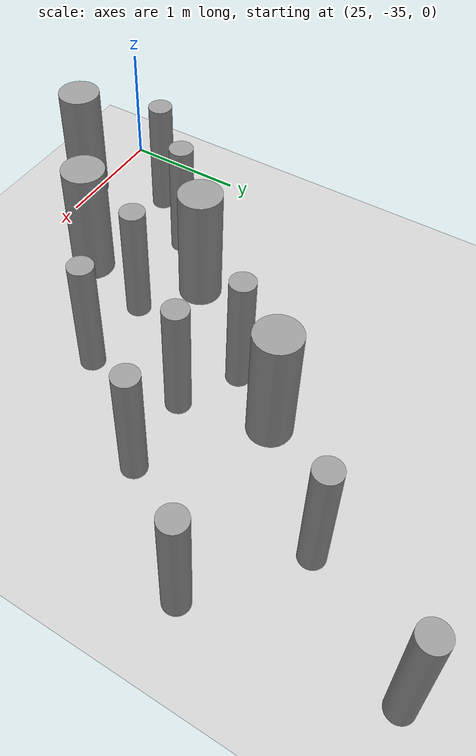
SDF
<sdf version="1.6">
 <world name="default">
  <model name="ground_plane">
   <static>1</static>
   <link name="link">
    <collision name="collision">
     <geometry><plane><normal>0 0 1</normal><size>100 100</size></plane></geometry>
     <surface><friction><ode><mu>100</mu><mu2>50</mu2></ode></friction></surface>
    </collision>
    <visual name="visual">
     <cast_shadows>0</cast_shadows>
     <geometry><plane><normal>0 0 1</normal><size>100 100</size></plane></geometry>
     <material>
      <script><uri>file://media/materials/scripts/gazebo.material</uri><name>Gazebo/Grey</name></script>
     </material>
    </visual>
   </link>
  </model>
  <model name="cyl_wall_clone_clone_1_clone_1_clone_clone_0_clone">
   <link name="link_0">
    <pose>-2.73893 -0.366465 0 0 -0 0</pose>
    <inertial>
     <mass>0.0374993</mass>
     <inertia>
      <ixx>0.00321281</ixx>
      <ixy>0</ixy>
      <ixz>0</ixz>
      <iyy>0.00321281</iyy>
      <iyz>0</iyz>
      <izz>0.000175774</izz>
     </inertia>
    </inertial>
    <visual name="visual">
     <geometry><cylinder><radius>0.0968661</radius><length>1</length></cylinder></geometry>
     <material>
      <lighting>1</lighting>
      <script><uri>file://media/materials/scripts/gazebo.material</uri><name>Gazebo/Grey</name></script>
      <ambient>0.3 0.3 0.3 1</ambient>
      <diffuse>0.7 0.7 0.7 1</diffuse>
      <specular>0.01 0.01 0.01 1</specular>
      <emissive>0 0 0 1</emissive>
     </material>
    </visual>
    <collision name="collision">
     <geometry><cylinder><radius>0.096866</radius><length>1</length></cylinder></geometry>
     <surface>
      <friction>
       <ode><mu>1</mu><mu2>1</mu2><fdir1>0 0 0</fdir1><slip1>0</slip1><slip2>0</slip2></ode>
       <torsional>
        <coefficient>1</coefficient>
        <patch_radius>0</patch_radius>
        <surface_radius>0</surface_radius>
        <use_patch_radius>1</use_patch_radius>
        <ode><slip>0</slip></ode>
       </torsional>
      </friction>
      <bounce><restitution_coefficient>0</restitution_coefficient><threshold>1e+06</threshold></bounce>
      <contact>
       <collide_without_contact>0</collide_without_contact>
       <collide_without_contact_bitmask>1</collide_without_contact_bitmask>
       <collide_bitmask>1</collide_bitmask>
       <ode>
        <soft_cfm>0</soft_cfm>
        <soft_erp>0.2</soft_erp>
        <kp>1e+13</kp>
        <kd>1</kd>
        <max_vel>0.01</max_vel>
        <min_depth>0</min_depth>
       </ode>
       <bullet>
        <split_impulse>1</split_impulse>
        <split_impulse_penetration_threshold>-0.01</split_impulse_penetration_threshold>
        <soft_cfm>0</soft_cfm>
        <soft_erp>0.2</soft_erp>
        <kp>1e+13</kp>
        <kd>1</kd>
       </bullet>
      </contact>
     </surface>
    </collision>
   </link>
   <link name="link_0_clone">
    <pose>-1.73893 0.61877 0 0 -0 0</pose>
    <inertial>
     <mass>0.0374993</mass>
     <inertia>
      <ixx>0.00321281</ixx>
      <ixy>0</ixy>
      <ixz>0</ixz>
      <iyy>0.00321281</iyy>
      <iyz>0</iyz>
      <izz>0.000175774</izz>
     </inertia>
    </inertial>
    <visual name="visual">
     <geometry><cylinder><radius>0.0968661</radius><length>1</length></cylinder></geometry>
     <material>
      <lighting>1</lighting>
      <script><uri>file://media/materials/scripts/gazebo.material</uri><name>Gazebo/Grey</name></script>
      <ambient>0.3 0.3 0.3 1</ambient>
      <diffuse>0.7 0.7 0.7 1</diffuse>
      <specular>0.01 0.01 0.01 1</specular>
      <emissive>0 0 0 1</emissive>
      <shader type="pixel"/>
     </material>
    </visual>
    <collision name="collision">
     <geometry><cylinder><radius>0.096866</radius><length>1</length></cylinder></geometry>
     <surface>
      <friction>
       <ode><mu>1</mu><mu2>1</mu2><fdir1>0 0 0</fdir1><slip1>0</slip1><slip2>0</slip2></ode>
       <torsional>
        <coefficient>1</coefficient>
        <patch_radius>0</patch_radius>
        <surface_radius>0</surface_radius>
        <use_patch_radius>1</use_patch_radius>
        <ode><slip>0</slip></ode>
       </torsional>
      </friction>
      <bounce><restitution_coefficient>0</restitution_coefficient><threshold>1e+06</threshold></bounce>
      <contact>
       <collide_without_contact>0</collide_without_contact>
       <collide_without_contact_bitmask>1</collide_without_contact_bitmask>
       <collide_bitmask>1</collide_bitmask>
       <ode>
        <soft_cfm>0</soft_cfm>
        <soft_erp>0.2</soft_erp>
        <kp>1e+13</kp>
        <kd>1</kd>
        <max_vel>0.01</max_vel>
        <min_depth>0</min_depth>
       </ode>
       <bullet>
        <split_impulse>1</split_impulse>
        <split_impulse_penetration_threshold>-0.01</split_impulse_penetration_threshold>
        <soft_cfm>0</soft_cfm>
        <soft_erp>0.2</soft_erp>
        <kp>1e+13</kp>
        <kd>1</kd>
       </bullet>
      </contact>
     </surface>
    </collision>
   </link>
   <link name="link_0_clone_clone">
    <pose>-0.327073 0.143919 0 0 -0 0</pose>
    <inertial>
     <mass>0.0374993</mass>
     <inertia>
      <ixx>0.00321281</ixx>
      <ixy>0</ixy>
      <ixz>0</ixz>
      <iyy>0.00321281</iyy>
      <iyz>0</iyz>
      <izz>0.000175774</izz>
     </inertia>
    </inertial>
    <visual name="visual">
     <geometry><cylinder><radius>0.0968661</radius><length>1</length></cylinder></geometry>
     <material>
      <lighting>1</lighting>
      <script><uri>file://media/materials/scripts/gazebo.material</uri><name>Gazebo/Grey</name></script>
      <ambient>0.3 0.3 0.3 1</ambient>
      <diffuse>0.7 0.7 0.7 1</diffuse>
      <specular>0.01 0.01 0.01 1</specular>
      <emissive>0 0 0 1</emissive>
      <shader type="pixel"/>
     </material>
    </visual>
    <collision name="collision">
     <geometry><cylinder><radius>0.096866</radius><length>1</length></cylinder></geometry>
     <surface>
      <friction>
       <ode><mu>1</mu><mu2>1</mu2><fdir1>0 0 0</fdir1><slip1>0</slip1><slip2>0</slip2></ode>
       <torsional>
        <coefficient>1</coefficient>
        <patch_radius>0</patch_radius>
        <surface_radius>0</surface_radius>
        <use_patch_radius>1</use_patch_radius>
        <ode><slip>0</slip></ode>
       </torsional>
      </friction>
      <bounce><restitution_coefficient>0</restitution_coefficient><threshold>1e+06</threshold></bounce>
      <contact>
       <collide_without_contact>0</collide_without_contact>
       <collide_without_contact_bitmask>1</collide_without_contact_bitmask>
       <collide_bitmask>1</collide_bitmask>
       <ode>
        <soft_cfm>0</soft_cfm>
        <soft_erp>0.2</soft_erp>
        <kp>1e+13</kp>
        <kd>1</kd>
        <max_vel>0.01</max_vel>
        <min_depth>0</min_depth>
       </ode>
       <bullet>
        <split_impulse>1</split_impulse>
        <split_impulse_penetration_threshold>-0.01</split_impulse_penetration_threshold>
        <soft_cfm>0</soft_cfm>
        <soft_erp>0.2</soft_erp>
        <kp>1e+13</kp>
        <kd>1</kd>
       </bullet>
      </contact>
     </surface>
    </collision>
   </link>
   <link name="link_0_clone_clone_0">
    <pose>1.26107 -0.419359 0 0 -0 0</pose>
    <inertial>
     <mass>0.0374993</mass>
     <inertia>
      <ixx>0.00321281</ixx>
      <ixy>0</ixy>
      <ixz>0</ixz>
      <iyy>0.00321281</iyy>
      <iyz>0</iyz>
      <izz>0.000175774</izz>
     </inertia>
    </inertial>
    <visual name="visual">
     <geometry><cylinder><radius>0.0968661</radius><length>1</length></cylinder></geometry>
     <material>
      <lighting>1</lighting>
      <script><uri>file://media/materials/scripts/gazebo.material</uri><name>Gazebo/Grey</name></script>
      <ambient>0.3 0.3 0.3 1</ambient>
      <diffuse>0.7 0.7 0.7 1</diffuse>
      <specular>0.01 0.01 0.01 1</specular>
      <emissive>0 0 0 1</emissive>
      <shader type="pixel"/>
     </material>
    </visual>
    <collision name="collision">
     <geometry><cylinder><radius>0.096866</radius><length>1</length></cylinder></geometry>
     <surface>
      <friction>
       <ode><mu>1</mu><mu2>1</mu2><fdir1>0 0 0</fdir1><slip1>0</slip1><slip2>0</slip2></ode>
       <torsional>
        <coefficient>1</coefficient>
        <patch_radius>0</patch_radius>
        <surface_radius>0</surface_radius>
        <use_patch_radius>1</use_patch_radius>
        <ode><slip>0</slip></ode>
       </torsional>
      </friction>
      <bounce><restitution_coefficient>0</restitution_coefficient><threshold>1e+06</threshold></bounce>
      <contact>
       <collide_without_contact>0</collide_without_contact>
       <collide_without_contact_bitmask>1</collide_without_contact_bitmask>
       <collide_bitmask>1</collide_bitmask>
       <ode>
        <soft_cfm>0</soft_cfm>
        <soft_erp>0.2</soft_erp>
        <kp>1e+13</kp>
        <kd>1</kd>
        <max_vel>0.01</max_vel>
        <min_depth>0</min_depth>
       </ode>
       <bullet>
        <split_impulse>1</split_impulse>
        <split_impulse_penetration_threshold>-0.01</split_impulse_penetration_threshold>
        <soft_cfm>0</soft_cfm>
        <soft_erp>0.2</soft_erp>
        <kp>1e+13</kp>
        <kd>1</kd>
       </bullet>
      </contact>
     </surface>
    </collision>
   </link>
   <link name="link_0_clone_clone_1">
    <pose>-1.73893 -0.277168 0 0 -0 0</pose>
    <inertial>
     <mass>0.0374993</mass>
     <inertia>
      <ixx>0.00321281</ixx>
      <ixy>0</ixy>
      <ixz>0</ixz>
      <iyy>0.00321281</iyy>
      <iyz>0</iyz>
      <izz>0.000175774</izz>
     </inertia>
    </inertial>
    <visual name="visual">
     <geometry><cylinder><radius>0.0968661</radius><length>1</length></cylinder></geometry>
     <material>
      <lighting>1</lighting>
      <script><uri>file://media/materials/scripts/gazebo.material</uri><name>Gazebo/Grey</name></script>
      <ambient>0.3 0.3 0.3 1</ambient>
      <diffuse>0.7 0.7 0.7 1</diffuse>
      <specular>0.01 0.01 0.01 1</specular>
      <emissive>0 0 0 1</emissive>
      <shader type="pixel"/>
     </material>
    </visual>
    <collision name="collision">
     <geometry><cylinder><radius>0.096866</radius><length>1</length></cylinder></geometry>
     <surface>
      <friction>
       <ode><mu>1</mu><mu2>1</mu2><fdir1>0 0 0</fdir1><slip1>0</slip1><slip2>0</slip2></ode>
       <torsional>
        <coefficient>1</coefficient>
        <patch_radius>0</patch_radius>
        <surface_radius>0</surface_radius>
        <use_patch_radius>1</use_patch_radius>
        <ode><slip>0</slip></ode>
       </torsional>
      </friction>
      <bounce><restitution_coefficient>0</restitution_coefficient><threshold>1e+06</threshold></bounce>
      <contact>
       <collide_without_contact>0</collide_without_contact>
       <collide_without_contact_bitmask>1</collide_without_contact_bitmask>
       <collide_bitmask>1</collide_bitmask>
       <ode>
        <soft_cfm>0</soft_cfm>
        <soft_erp>0.2</soft_erp>
        <kp>1e+13</kp>
        <kd>1</kd>
        <max_vel>0.01</max_vel>
        <min_depth>0</min_depth>
       </ode>
       <bullet>
        <split_impulse>1</split_impulse>
        <split_impulse_penetration_threshold>-0.01</split_impulse_penetration_threshold>
        <soft_cfm>0</soft_cfm>
        <soft_erp>0.2</soft_erp>
        <kp>1e+13</kp>
        <kd>1</kd>
       </bullet>
      </contact>
     </surface>
    </collision>
   </link>
   <link name="link_0_clone_clone_2">
    <pose>-0.738934 0.593961 0 0 -0 0</pose>
    <inertial>
     <mass>0.0374993</mass>
     <inertia>
      <ixx>0.00321281</ixx>
      <ixy>0</ixy>
      <ixz>0</ixz>
      <iyy>0.00321281</iyy>
      <iyz>0</iyz>
      <izz>0.000175774</izz>
     </inertia>
    </inertial>
    <visual name="visual">
     <geometry><cylinder><radius>0.0968661</radius><length>1</length></cylinder></geometry>
     <material>
      <lighting>1</lighting>
      <script><uri>file://media/materials/scripts/gazebo.material</uri><name>Gazebo/Grey</name></script>
      <ambient>0.3 0.3 0.3 1</ambient>
      <diffuse>0.7 0.7 0.7 1</diffuse>
      <specular>0.01 0.01 0.01 1</specular>
      <emissive>0 0 0 1</emissive>
      <shader type="pixel"/>
     </material>
    </visual>
    <collision name="collision">
     <geometry><cylinder><radius>0.096866</radius><length>1</length></cylinder></geometry>
     <surface>
      <friction>
       <ode><mu>1</mu><mu2>1</mu2><fdir1>0 0 0</fdir1><slip1>0</slip1><slip2>0</slip2></ode>
       <torsional>
        <coefficient>1</coefficient>
        <patch_radius>0</patch_radius>
        <surface_radius>0</surface_radius>
        <use_patch_radius>1</use_patch_radius>
        <ode><slip>0</slip></ode>
       </torsional>
      </friction>
      <bounce><restitution_coefficient>0</restitution_coefficient><threshold>1e+06</threshold></bounce>
      <contact>
       <collide_without_contact>0</collide_without_contact>
       <collide_without_contact_bitmask>1</collide_without_contact_bitmask>
       <collide_bitmask>1</collide_bitmask>
       <ode>
        <soft_cfm>0</soft_cfm>
        <soft_erp>0.2</soft_erp>
        <kp>1e+13</kp>
        <kd>1</kd>
        <max_vel>0.01</max_vel>
        <min_depth>0</min_depth>
       </ode>
       <bullet>
        <split_impulse>1</split_impulse>
        <split_impulse_penetration_threshold>-0.01</split_impulse_penetration_threshold>
        <soft_cfm>0</soft_cfm>
        <soft_erp>0.2</soft_erp>
        <kp>1e+13</kp>
        <kd>1</kd>
       </bullet>
      </contact>
     </surface>
    </collision>
   </link>
   <link name="link_0_clone_clone_3">
    <pose>0.261066 0.624849 0 0 -0 0</pose>
    <inertial>
     <mass>0.0374993</mass>
     <inertia>
      <ixx>0.00321281</ixx>
      <ixy>0</ixy>
      <ixz>0</ixz>
      <iyy>0.00321281</iyy>
      <iyz>0</iyz>
      <izz>0.000175774</izz>
     </inertia>
    </inertial>
    <visual name="visual">
     <geometry><cylinder><radius>0.0968661</radius><length>1</length></cylinder></geometry>
     <material>
      <lighting>1</lighting>
      <script><uri>file://media/materials/scripts/gazebo.material</uri><name>Gazebo/Grey</name></script>
      <ambient>0.3 0.3 0.3 1</ambient>
      <diffuse>0.7 0.7 0.7 1</diffuse>
      <specular>0.01 0.01 0.01 1</specular>
      <emissive>0 0 0 1</emissive>
      <shader type="pixel"/>
     </material>
    </visual>
    <collision name="collision">
     <geometry><cylinder><radius>0.096866</radius><length>1</length></cylinder></geometry>
     <surface>
      <friction>
       <ode><mu>1</mu><mu2>1</mu2><fdir1>0 0 0</fdir1><slip1>0</slip1><slip2>0</slip2></ode>
       <torsional>
        <coefficient>1</coefficient>
        <patch_radius>0</patch_radius>
        <surface_radius>0</surface_radius>
        <use_patch_radius>1</use_patch_radius>
        <ode><slip>0</slip></ode>
       </torsional>
      </friction>
      <bounce><restitution_coefficient>0</restitution_coefficient><threshold>1e+06</threshold></bounce>
      <contact>
       <collide_without_contact>0</collide_without_contact>
       <collide_without_contact_bitmask>1</collide_without_contact_bitmask>
       <collide_bitmask>1</collide_bitmask>
       <ode>
        <soft_cfm>0</soft_cfm>
        <soft_erp>0.2</soft_erp>
        <kp>1e+13</kp>
        <kd>1</kd>
        <max_vel>0.01</max_vel>
        <min_depth>0</min_depth>
       </ode>
       <bullet>
        <split_impulse>1</split_impulse>
        <split_impulse_penetration_threshold>-0.01</split_impulse_penetration_threshold>
        <soft_cfm>0</soft_cfm>
        <soft_erp>0.2</soft_erp>
        <kp>1e+13</kp>
        <kd>1</kd>
       </bullet>
      </contact>
     </surface>
    </collision>
   </link>
   <link name="link_0_clone_clone_4">
    <pose>-0.239049 -0.353105 0 0 -0 0</pose>
    <inertial>
     <mass>0.0374993</mass>
     <inertia>
      <ixx>0.00321281</ixx>
      <ixy>0</ixy>
      <ixz>0</ixz>
      <iyy>0.00321281</iyy>
      <iyz>0</iyz>
      <izz>0.000175774</izz>
     </inertia>
    </inertial>
    <visual name="visual">
     <geometry><cylinder><radius>0.0968661</radius><length>1</length></cylinder></geometry>
     <material>
      <lighting>1</lighting>
      <script><uri>file://media/materials/scripts/gazebo.material</uri><name>Gazebo/Grey</name></script>
      <ambient>0.3 0.3 0.3 1</ambient>
      <diffuse>0.7 0.7 0.7 1</diffuse>
      <specular>0.01 0.01 0.01 1</specular>
      <emissive>0 0 0 1</emissive>
      <shader type="pixel"/>
     </material>
    </visual>
    <collision name="collision">
     <geometry><cylinder><radius>0.096866</radius><length>1</length></cylinder></geometry>
     <surface>
      <friction>
       <ode><mu>1</mu><mu2>1</mu2><fdir1>0 0 0</fdir1><slip1>0</slip1><slip2>0</slip2></ode>
       <torsional>
        <coefficient>1</coefficient>
        <patch_radius>0</patch_radius>
        <surface_radius>0</surface_radius>
        <use_patch_radius>1</use_patch_radius>
        <ode><slip>0</slip></ode>
       </torsional>
      </friction>
      <bounce><restitution_coefficient>0</restitution_coefficient><threshold>1e+06</threshold></bounce>
      <contact>
       <collide_without_contact>0</collide_without_contact>
       <collide_without_contact_bitmask>1</collide_without_contact_bitmask>
       <collide_bitmask>1</collide_bitmask>
       <ode>
        <soft_cfm>0</soft_cfm>
        <soft_erp>0.2</soft_erp>
        <kp>1e+13</kp>
        <kd>1</kd>
        <max_vel>0.01</max_vel>
        <min_depth>0</min_depth>
       </ode>
       <bullet>
        <split_impulse>1</split_impulse>
        <split_impulse_penetration_threshold>-0.01</split_impulse_penetration_threshold>
        <soft_cfm>0</soft_cfm>
        <soft_erp>0.2</soft_erp>
        <kp>1e+13</kp>
        <kd>1</kd>
       </bullet>
      </contact>
     </surface>
    </collision>
   </link>
   <link name="link_0_clone_clone_5">
    <pose>0.672792 0.143919 0 0 -0 0</pose>
    <inertial>
     <mass>0.0374993</mass>
     <inertia>
      <ixx>0.00321281</ixx>
      <ixy>0</ixy>
      <ixz>0</ixz>
      <iyy>0.00321281</iyy>
      <iyz>0</iyz>
      <izz>0.000175774</izz>
     </inertia>
    </inertial>
    <visual name="visual">
     <geometry><cylinder><radius>0.0968661</radius><length>1</length></cylinder></geometry>
     <material>
      <lighting>1</lighting>
      <script><uri>file://media/materials/scripts/gazebo.material</uri><name>Gazebo/Grey</name></script>
      <ambient>0.3 0.3 0.3 1</ambient>
      <diffuse>0.7 0.7 0.7 1</diffuse>
      <specular>0.01 0.01 0.01 1</specular>
      <emissive>0 0 0 1</emissive>
      <shader type="pixel"/>
     </material>
    </visual>
    <collision name="collision">
     <geometry><cylinder><radius>0.096866</radius><length>1</length></cylinder></geometry>
     <surface>
      <friction>
       <ode><mu>1</mu><mu2>1</mu2><fdir1>0 0 0</fdir1><slip1>0</slip1><slip2>0</slip2></ode>
       <torsional>
        <coefficient>1</coefficient>
        <patch_radius>0</patch_radius>
        <surface_radius>0</surface_radius>
        <use_patch_radius>1</use_patch_radius>
        <ode><slip>0</slip></ode>
       </torsional>
      </friction>
      <bounce><restitution_coefficient>0</restitution_coefficient><threshold>1e+06</threshold></bounce>
      <contact>
       <collide_without_contact>0</collide_without_contact>
       <collide_without_contact_bitmask>1</collide_without_contact_bitmask>
       <collide_bitmask>1</collide_bitmask>
       <ode>
        <soft_cfm>0</soft_cfm>
        <soft_erp>0.2</soft_erp>
        <kp>1e+13</kp>
        <kd>1</kd>
        <max_vel>0.01</max_vel>
        <min_depth>0</min_depth>
       </ode>
       <bullet>
        <split_impulse>1</split_impulse>
        <split_impulse_penetration_threshold>-0.01</split_impulse_penetration_threshold>
        <soft_cfm>0</soft_cfm>
        <soft_erp>0.2</soft_erp>
        <kp>1e+13</kp>
        <kd>1</kd>
       </bullet>
      </contact>
     </surface>
    </collision>
   </link>
   <link name="link_0_clone_clone_6">
    <pose>1.84596 -0.433423 0 0 -0 0</pose>
    <inertial>
     <mass>0.0374993</mass>
     <inertia>
      <ixx>0.00321281</ixx>
      <ixy>0</ixy>
      <ixz>0</ixz>
      <iyy>0.00321281</iyy>
      <iyz>0</iyz>
      <izz>0.000175774</izz>
     </inertia>
    </inertial>
    <visual name="visual">
     <geometry><cylinder><radius>0.0968661</radius><length>1</length></cylinder></geometry>
     <material>
      <lighting>1</lighting>
      <script><uri>file://media/materials/scripts/gazebo.material</uri><name>Gazebo/Grey</name></script>
      <ambient>0.3 0.3 0.3 1</ambient>
      <diffuse>0.7 0.7 0.7 1</diffuse>
      <specular>0.01 0.01 0.01 1</specular>
      <emissive>0 0 0 1</emissive>
      <shader type="pixel"/>
     </material>
    </visual>
    <collision name="collision">
     <geometry><cylinder><radius>0.096866</radius><length>1</length></cylinder></geometry>
     <surface>
      <friction>
       <ode><mu>1</mu><mu2>1</mu2><fdir1>0 0 0</fdir1><slip1>0</slip1><slip2>0</slip2></ode>
       <torsional>
        <coefficient>1</coefficient>
        <patch_radius>0</patch_radius>
        <surface_radius>0</surface_radius>
        <use_patch_radius>1</use_patch_radius>
        <ode><slip>0</slip></ode>
       </torsional>
      </friction>
      <bounce><restitution_coefficient>0</restitution_coefficient><threshold>1e+06</threshold></bounce>
      <contact>
       <collide_without_contact>0</collide_without_contact>
       <collide_without_contact_bitmask>1</collide_without_contact_bitmask>
       <collide_bitmask>1</collide_bitmask>
       <ode>
        <soft_cfm>0</soft_cfm>
        <soft_erp>0.2</soft_erp>
        <kp>1e+13</kp>
        <kd>1</kd>
        <max_vel>0.01</max_vel>
        <min_depth>0</min_depth>
       </ode>
       <bullet>
        <split_impulse>1</split_impulse>
        <split_impulse_penetration_threshold>-0.01</split_impulse_penetration_threshold>
        <soft_cfm>0</soft_cfm>
        <soft_erp>0.2</soft_erp>
        <kp>1e+13</kp>
        <kd>1</kd>
       </bullet>
      </contact>
     </surface>
    </collision>
   </link>
   <link name="link_1">
    <pose>-0.738934 -0.397931 0 0 -0 0</pose>
    <inertial>
     <mass>0.117398</mass>
     <inertia>
      <ixx>0.0106445</ixx>
      <ixy>0</ixy>
      <ixz>0</ixz>
      <iyy>0.0106445</iyy>
      <iyz>0</iyz>
      <izz>0.00172278</izz>
     </inertia>
    </inertial>
    <visual name="visual">
     <geometry><cylinder><radius>0.171317</radius><length>1</length></cylinder></geometry>
     <material>
      <lighting>1</lighting>
      <script><uri>file://media/materials/scripts/gazebo.material</uri><name>Gazebo/Grey</name></script>
      <ambient>0.3 0.3 0.3 1</ambient>
      <diffuse>0.7 0.7 0.7 1</diffuse>
      <specular>0.01 0.01 0.01 1</specular>
      <emissive>0 0 0 1</emissive>
     </material>
    </visual>
    <collision name="collision">
     <geometry><cylinder><radius>0.171317</radius><length>1</length></cylinder></geometry>
     <surface>
      <friction>
       <ode><mu>1</mu><mu2>1</mu2><fdir1>0 0 0</fdir1><slip1>0</slip1><slip2>0</slip2></ode>
       <torsional>
        <coefficient>1</coefficient>
        <patch_radius>0</patch_radius>
        <surface_radius>0</surface_radius>
        <use_patch_radius>1</use_patch_radius>
        <ode><slip>0</slip></ode>
       </torsional>
      </friction>
      <bounce><restitution_coefficient>0</restitution_coefficient><threshold>1e+06</threshold></bounce>
      <contact>
       <collide_without_contact>0</collide_without_contact>
       <collide_without_contact_bitmask>1</collide_without_contact_bitmask>
       <collide_bitmask>1</collide_bitmask>
       <ode>
        <soft_cfm>0</soft_cfm>
        <soft_erp>0.2</soft_erp>
        <kp>1e+13</kp>
        <kd>1</kd>
        <max_vel>0.01</max_vel>
        <min_depth>0</min_depth>
       </ode>
       <bullet>
        <split_impulse>1</split_impulse>
        <split_impulse_penetration_threshold>-0.01</split_impulse_penetration_threshold>
        <soft_cfm>0</soft_cfm>
        <soft_erp>0.2</soft_erp>
        <kp>1e+13</kp>
        <kd>1</kd>
       </bullet>
      </contact>
     </surface>
    </collision>
   </link>
   <link name="link_1_clone">
    <pose>0.697784 -0.380861 0 0 -0 0</pose>
    <inertial>
     <mass>0.117398</mass>
     <inertia>
      <ixx>0.0106445</ixx>
      <ixy>0</ixy>
      <ixz>0</ixz>
      <iyy>0.0106445</iyy>
      <iyz>0</iyz>
      <izz>0.00172278</izz>
     </inertia>
    </inertial>
    <visual name="visual">
     <geometry><cylinder><radius>0.171317</radius><length>1</length></cylinder></geometry>
     <material>
      <lighting>1</lighting>
      <script><uri>file://media/materials/scripts/gazebo.material</uri><name>Gazebo/Grey</name></script>
      <ambient>0.3 0.3 0.3 1</ambient>
      <diffuse>0.7 0.7 0.7 1</diffuse>
      <specular>0.01 0.01 0.01 1</specular>
      <emissive>0 0 0 1</emissive>
      <shader type="pixel"/>
     </material>
    </visual>
    <collision name="collision">
     <geometry><cylinder><radius>0.171317</radius><length>1</length></cylinder></geometry>
     <surface>
      <friction>
       <ode><mu>1</mu><mu2>1</mu2><fdir1>0 0 0</fdir1><slip1>0</slip1><slip2>0</slip2></ode>
       <torsional>
        <coefficient>1</coefficient>
        <patch_radius>0</patch_radius>
        <surface_radius>0</surface_radius>
        <use_patch_radius>1</use_patch_radius>
        <ode><slip>0</slip></ode>
       </torsional>
      </friction>
      <bounce><restitution_coefficient>0</restitution_coefficient><threshold>1e+06</threshold></bounce>
      <contact>
       <collide_without_contact>0</collide_without_contact>
       <collide_without_contact_bitmask>1</collide_without_contact_bitmask>
       <collide_bitmask>1</collide_bitmask>
       <ode>
        <soft_cfm>0</soft_cfm>
        <soft_erp>0.2</soft_erp>
        <kp>1e+13</kp>
        <kd>1</kd>
        <max_vel>0.01</max_vel>
        <min_depth>0</min_depth>
       </ode>
       <bullet>
        <split_impulse>1</split_impulse>
        <split_impulse_penetration_threshold>-0.01</split_impulse_penetration_threshold>
        <soft_cfm>0</soft_cfm>
        <soft_erp>0.2</soft_erp>
        <kp>1e+13</kp>
        <kd>1</kd>
       </bullet>
      </contact>
     </surface>
    </collision>
   </link>
   <link name="link_1_clone_0">
    <pose>1.26107 0.358974 0 0 -0 0</pose>
    <inertial>
     <mass>0.117398</mass>
     <inertia>
      <ixx>0.0106445</ixx>
      <ixy>0</ixy>
      <ixz>0</ixz>
      <iyy>0.0106445</iyy>
      <iyz>0</iyz>
      <izz>0.00172278</izz>
     </inertia>
    </inertial>
    <visual name="visual">
     <geometry><cylinder><radius>0.171317</radius><length>1</length></cylinder></geometry>
     <material>
      <lighting>1</lighting>
      <script><uri>file://media/materials/scripts/gazebo.material</uri><name>Gazebo/Grey</name></script>
      <ambient>0.3 0.3 0.3 1</ambient>
      <diffuse>0.7 0.7 0.7 1</diffuse>
      <specular>0.01 0.01 0.01 1</specular>
      <emissive>0 0 0 1</emissive>
      <shader type="pixel"/>
     </material>
    </visual>
    <collision name="collision">
     <geometry><cylinder><radius>0.171317</radius><length>1</length></cylinder></geometry>
     <surface>
      <friction>
       <ode><mu>1</mu><mu2>1</mu2><fdir1>0 0 0</fdir1><slip1>0</slip1><slip2>0</slip2></ode>
       <torsional>
        <coefficient>1</coefficient>
        <patch_radius>0</patch_radius>
        <surface_radius>0</surface_radius>
        <use_patch_radius>1</use_patch_radius>
        <ode><slip>0</slip></ode>
       </torsional>
      </friction>
      <bounce><restitution_coefficient>0</restitution_coefficient><threshold>1e+06</threshold></bounce>
      <contact>
       <collide_without_contact>0</collide_without_contact>
       <collide_without_contact_bitmask>1</collide_without_contact_bitmask>
       <collide_bitmask>1</collide_bitmask>
       <ode>
        <soft_cfm>0</soft_cfm>
        <soft_erp>0.2</soft_erp>
        <kp>1e+13</kp>
        <kd>1</kd>
        <max_vel>0.01</max_vel>
        <min_depth>0</min_depth>
       </ode>
       <bullet>
        <split_impulse>1</split_impulse>
        <split_impulse_penetration_threshold>-0.01</split_impulse_penetration_threshold>
        <soft_cfm>0</soft_cfm>
        <soft_erp>0.2</soft_erp>
        <kp>1e+13</kp>
        <kd>1</kd>
       </bullet>
      </contact>
     </surface>
    </collision>
   </link>
   <link name="link_1_clone_1">
    <pose>2.26107 0.143919 0 0 -0 0</pose>
    <inertial>
     <mass>0.117398</mass>
     <inertia>
      <ixx>0.0106445</ixx>
      <ixy>0</ixy>
      <ixz>0</ixz>
      <iyy>0.0106445</iyy>
      <iyz>0</iyz>
      <izz>0.00172278</izz>
     </inertia>
    </inertial>
    <visual name="visual">
     <geometry><cylinder><radius>0.171317</radius><length>1</length></cylinder></geometry>
     <material>
      <lighting>1</lighting>
      <script><uri>file://media/materials/scripts/gazebo.material</uri><name>Gazebo/Grey</name></script>
      <ambient>0.3 0.3 0.3 1</ambient>
      <diffuse>0.7 0.7 0.7 1</diffuse>
      <specular>0.01 0.01 0.01 1</specular>
      <emissive>0 0 0 1</emissive>
      <shader type="pixel"/>
     </material>
    </visual>
    <collision name="collision">
     <geometry><cylinder><radius>0.171317</radius><length>1</length></cylinder></geometry>
     <surface>
      <friction>
       <ode><mu>1</mu><mu2>1</mu2><fdir1>0 0 0</fdir1><slip1>0</slip1><slip2>0</slip2></ode>
       <torsional>
        <coefficient>1</coefficient>
        <patch_radius>0</patch_radius>
        <surface_radius>0</surface_radius>
        <use_patch_radius>1</use_patch_radius>
        <ode><slip>0</slip></ode>
       </torsional>
      </friction>
      <bounce><restitution_coefficient>0</restitution_coefficient><threshold>1e+06</threshold></bounce>
      <contact>
       <collide_without_contact>0</collide_without_contact>
       <collide_without_contact_bitmask>1</collide_without_contact_bitmask>
       <collide_bitmask>1</collide_bitmask>
       <ode>
        <soft_cfm>0</soft_cfm>
        <soft_erp>0.2</soft_erp>
        <kp>1e+13</kp>
        <kd>1</kd>
        <max_vel>0.01</max_vel>
        <min_depth>0</min_depth>
       </ode>
       <bullet>
        <split_impulse>1</split_impulse>
        <split_impulse_penetration_threshold>-0.01</split_impulse_penetration_threshold>
        <soft_cfm>0</soft_cfm>
        <soft_erp>0.2</soft_erp>
        <kp>1e+13</kp>
        <kd>1</kd>
       </bullet>
      </contact>
     </surface>
    </collision>
   </link>
   <static>1</static>
   <pose>26.9909 -33.2134 0.5 0 0 -2.24061</pose>
  </model>
 </world>
</sdf>
